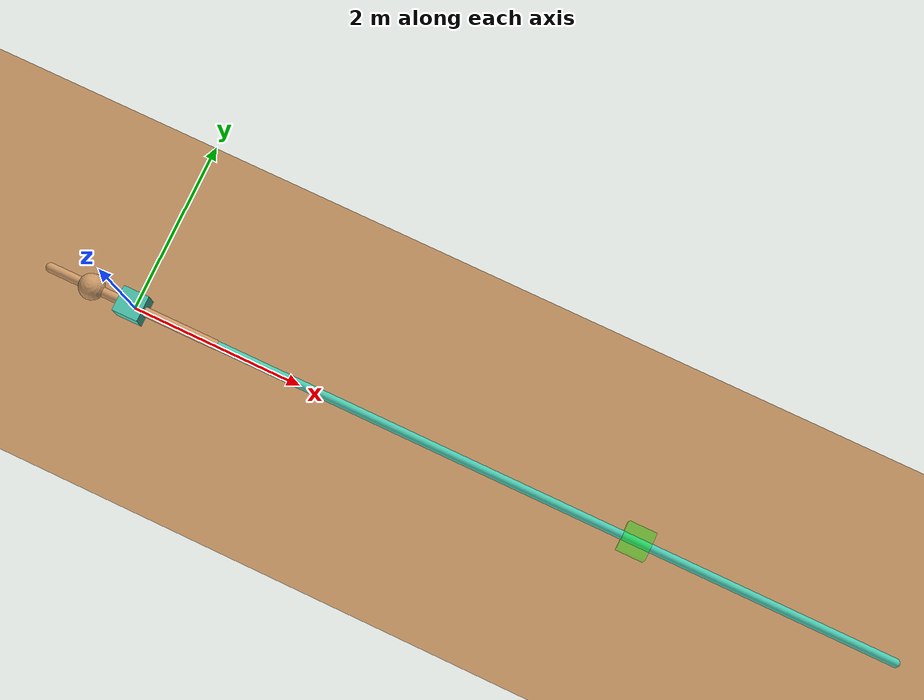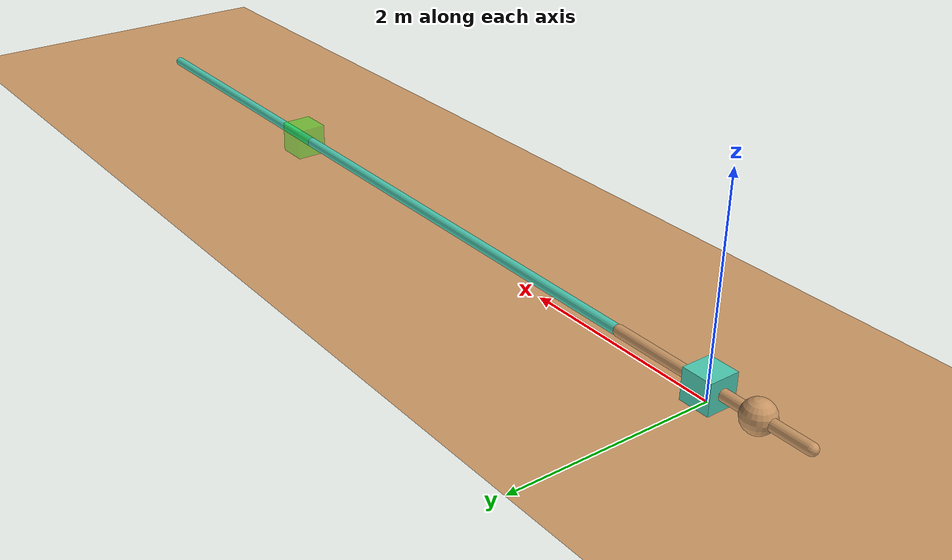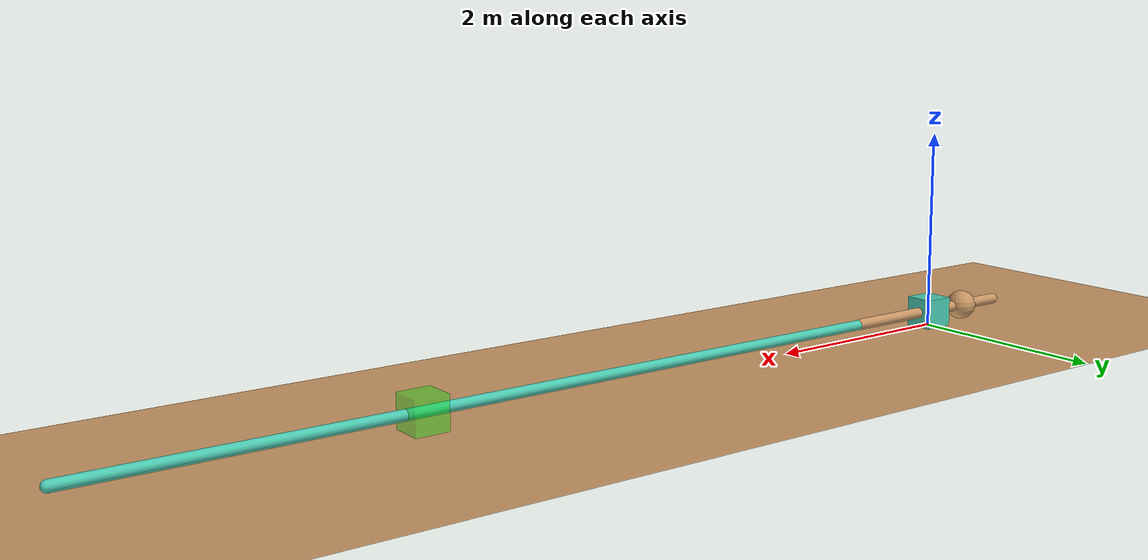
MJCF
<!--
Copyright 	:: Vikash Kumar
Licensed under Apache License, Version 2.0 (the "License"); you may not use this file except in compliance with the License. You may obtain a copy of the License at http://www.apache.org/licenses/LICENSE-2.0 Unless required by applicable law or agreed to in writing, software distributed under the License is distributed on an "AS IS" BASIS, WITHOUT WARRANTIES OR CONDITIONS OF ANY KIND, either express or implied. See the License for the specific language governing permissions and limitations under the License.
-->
<mujoco model='slider-v1.5'>
    <compiler inertiafromgeom='true' angle='radian'/>

    <default>
        <joint limited='true' damping='0.01' armature='0' frictionloss='0.1' />
        <geom contype='1' conaffinity='1' condim='3' rgba='0.8 0.6 .4 1'
        	margin="0.001" solref=".02 1" solimp=".8 .8 .01" material="geom" density="50"/>
        <motor ctrlrange='-1 1'  ctrllimited='true'/>
    </default>

    <option timestep='0.002' iterations="50" solver="PGS">
        <flag energy="enable"/>
    </option>

    <visual>
        <map fogstart="3" fogend="5" force="0.1" znear="0.1"/>
        <quality shadowsize="2048"/>
        <global offwidth="800" offheight="800"/>
    </visual>

    <asset>
        <texture name="skybox" type="skybox" builtin="gradient" rgb1=".08 .09 .10" rgb2="0 0 0"
               width="800" height="800" mark="random" markrgb=".8 .8 .8"/>
        <texture name="texgeom" type="cube" builtin="flat" mark="cross" width="127" height="1278" markrgb="1 1 1" random="0.01"/>
        <texture name="texplane" type="2d" builtin="checker" rgb1=".2 .3 .4" rgb2=".1 0.15 0.2"
            width="512" height="512"/>

        <material name='MatPlane' reflectance='0.5' texture="texplane" texrepeat="1 1" texuniform="true"/>
        <material name='geom' texture="texgeom" texuniform="true"/>
    </asset>

    <worldbody>
        <light directional='true' diffuse='.8 .8 .8' specular='0.3 0.3 0.3' pos='0 -.15 1.0' dir='0 -.15 -1'/>
		<geom name='floor' pos='4 0 0' size='7 2 .125' conaffinity='0' contype='0' type='plane' material="MatPlane" condim='3'/>
		<geom name="track_boss" type="capsule" pos='0 0 .15' conaffinity='0' contype='0' size=".055 1" euler='0 1.57 0'/>
		<geom name="track_worker" type="capsule" pos='4 0 .15' conaffinity='0' contype='0' size=".05 5" euler='0 1.57 0' rgba='.3 .8 .7 1'/>
		<geom name="target" type="box" pos='6 0 .15' conaffinity='0' contype='0' size=".16 .16 .16" rgba='0 1 0 .4'/>

		<body name='boss' pos='-.5 0 .15'>
			<geom name='ball' type='sphere' size='.15'/>
			<joint name='ballx' type='slide' axis='1 0 0' range='-.5 1.5'/>
		</body>

		<body name='worker' pos='0 0 .15'>
			<geom type='box' size='.15 .15 .15' rgba='.3 .8 .7 1'/>
			<joint name='workerx' type='slide' axis='1 0 0' limited='true' range='-1 9' frictionloss="2"/>
		</body>
	</worldbody>

    <actuator>
		<motor name='bossx' 	gear='50' joint='ballx'/>
    </actuator>

	<sensor>
		<jointpos name="ballx"	joint="ballx"/>
	</sensor>

</mujoco>
